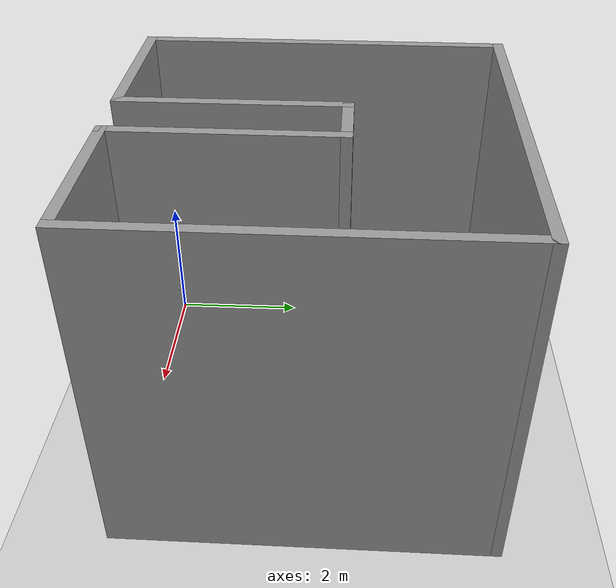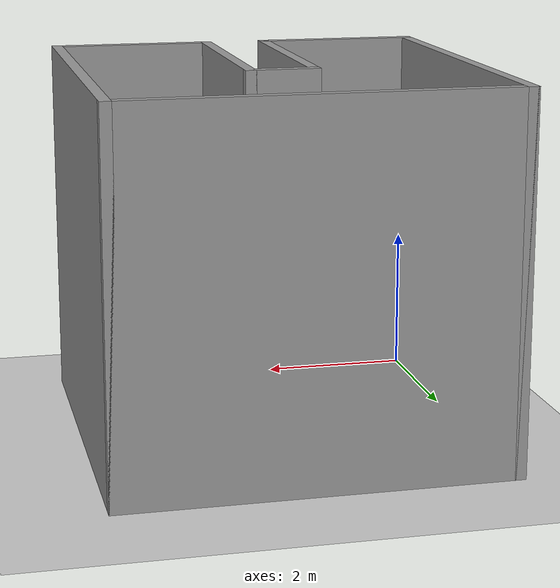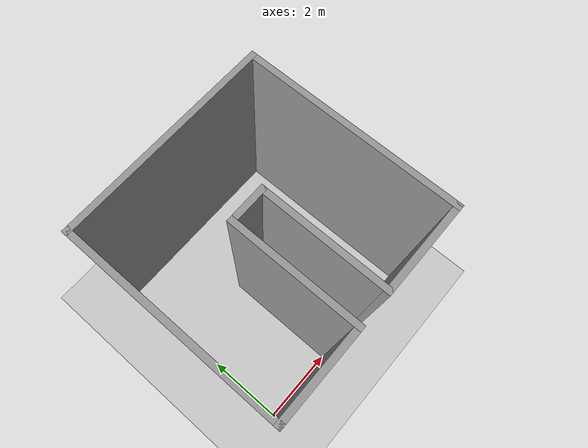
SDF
<sdf version="1.6">
 <world name="default">
  <include><uri>model://ground_plane</uri></include>
  <include><uri>model://sun</uri></include>
  <scene><shadows>false</shadows></scene>
  <physics type="ode">
   <real_time_update_rate>1000.0</real_time_update_rate>
   <max_step_size>0.001</max_step_size>
   <real_time_factor>1</real_time_factor>
   <ode>
    <solver>
     <type>quick</type>
     <iters>150</iters>
     <precon_iters>0</precon_iters>
     <sor>1.400000</sor>
     <use_dynamic_moi_rescaling>1</use_dynamic_moi_rescaling>
    </solver>
    <constraints>
     <cfm>0.00001</cfm>
     <erp>0.2</erp>
     <contact_max_correcting_vel>2000.000000</contact_max_correcting_vel>
     <contact_surface_layer>0.01000</contact_surface_layer>
    </constraints>
   </ode>
  </physics>
  <include><uri>model://env8</uri><pose>2.5 2.5 0 0 0 0</pose></include>
 </world>
</sdf>

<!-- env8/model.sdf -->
<sdf version="1.7">
  <model name="env8">
    <link name="Wall_West_Inner">
      <collision name="Wall_West_Inner_Collision">
        <geometry>
          <box>
            <size>3.15 0.15 5</size>
          </box>
        </geometry>
        <pose>0 0 2.5 0 0 0</pose>
      </collision>
      <visual name="Wall_West_Inner_Visual">
        <geometry>
          <box>
            <size>3.15 0.15 5</size>
          </box>
        </geometry>
        <pose>0 0 2.5 0 0 0</pose>
        <material>
          <script>
            <uri>file://media/materials/scripts/gazebo.material</uri>
            <name>Gazebo/Grey</name>
          </script>
          <ambient>1 1 1 1</ambient>
        </material>
        <meta>
          <layer>0</layer>
        </meta>
      </visual>
      <pose>-0.425 -1.075 0 0 0 1.5708</pose>
    </link>
    <link name="Wall_South_West">
      <collision name="Wall_South_West_Collision">
        <geometry>
          <box>
            <size>2.3 0.15 5</size>
          </box>
        </geometry>
        <pose>0 0 2.5 0 0 0</pose>
      </collision>
      <visual name="Wall_South_West_Visual">
        <geometry>
          <box>
            <size>2.3 0.15 5</size>
          </box>
        </geometry>
        <pose>0 0 2.5 0 0 0</pose>
        <material>
          <script>
            <uri>file://media/materials/scripts/gazebo.material</uri>
            <name>Gazebo/Grey</name>
          </script>
          <ambient>1 1 1 1</ambient>
        </material>
        <meta>
          <layer>0</layer>
        </meta>
      </visual>
      <pose>-1.5 -2.575 0 0 0 0</pose>
    </link>
    <link name="Wall_West">
      <collision name="Wall_West_Collision">
        <geometry>
          <box>
            <size>5.3 0.15 5</size>
          </box>
        </geometry>
        <pose>0 0 2.5 0 0 0</pose>
      </collision>
      <visual name="Wall_West_Visual">
        <geometry>
          <box>
            <size>5.3 0.15 5</size>
          </box>
        </geometry>
        <pose>0 0 2.5 0 0 0</pose>
        <material>
          <script>
            <uri>file://media/materials/scripts/gazebo.material</uri>
            <name>Gazebo/Grey</name>
          </script>
          <ambient>1 1 1 1</ambient>
        </material>
        <meta>
          <layer>0</layer>
        </meta>
      </visual>
      <pose>-2.575 0 0 0 0 1.5708</pose>
    </link>
    <link name="Wall_North">
      <collision name="Wall_North_Collision">
        <geometry>
          <box>
            <size>5.3 0.15 5</size>
          </box>
        </geometry>
        <pose>0 0 2.5 0 0 0</pose>
      </collision>
      <visual name="Wall_North_Visual">
        <geometry>
          <box>
            <size>5.3 0.15 5</size>
          </box>
        </geometry>
        <pose>0 0 2.5 0 0 0</pose>
        <material>
          <script>
            <uri>file://media/materials/scripts/gazebo.material</uri>
            <name>Gazebo/Grey</name>
          </script>
          <ambient>1 1 1 1</ambient>
        </material>
        <meta>
          <layer>0</layer>
        </meta>
      </visual>
      <pose>0 2.575 0 0 0 0</pose>
    </link>
    <link name="Wall_East">
      <collision name="Wall_East_Collision">
        <geometry>
          <box>
            <size>5.3 0.15 5</size>
          </box>
        </geometry>
        <pose>0 0 2.5 0 0 0</pose>
      </collision>
      <visual name="Wall_East_Visual">
        <geometry>
          <box>
            <size>5.3 0.15 5</size>
          </box>
        </geometry>
        <pose>0 0 2.5 0 0 0</pose>
        <material>
          <script>
            <uri>file://media/materials/scripts/gazebo.material</uri>
            <name>Gazebo/Grey</name>
          </script>
          <ambient>1 1 1 1</ambient>
        </material>
        <meta>
          <layer>0</layer>
        </meta>
      </visual>
      <pose>2.575 0 0 0 0 1.5708</pose>
    </link>
    <link name="Wall_South_East">
      <collision name="Wall_South_East_Collision">
        <geometry>
          <box>
            <size>2.3 0.15 5</size>
          </box>
        </geometry>
        <pose>0 0 2.5 0 0 0</pose>
      </collision>
      <visual name="Wall_South_East_Visual">
        <geometry>
          <box>
            <size>2.3 0.15 5</size>
          </box>
        </geometry>
        <pose>0 0 2.5 0 0 0</pose>
        <material>
          <script>
            <uri>file://media/materials/scripts/gazebo.material</uri>
            <name>Gazebo/Grey</name>
          </script>
          <ambient>1 1 1 1</ambient>
        </material>
        <meta>
          <layer>0</layer>
        </meta>
      </visual>
      <pose>1.5 -2.575 0 0 0 0</pose>
    </link>
    <link name="Wall_East_Inner">
      <collision name="Wall_East_Inner_Collision">
        <geometry>
          <box>
            <size>3.15 0.15 5</size>
          </box>
        </geometry>
        <pose>0 0 2.5 0 0 0</pose>
      </collision>
      <visual name="Wall_East_Inner_Visual">
        <geometry>
          <box>
            <size>3.15 0.15 5</size>
          </box>
        </geometry>
        <pose>0 0 2.5 0 0 0</pose>
        <material>
          <script>
            <uri>file://media/materials/scripts/gazebo.material</uri>
            <name>Gazebo/Grey</name>
          </script>
          <ambient>1 1 1 1</ambient>
        </material>
        <meta>
          <layer>0</layer>
        </meta>
      </visual>
      <pose>0.425 -1.075 0 0 0 1.5708</pose>
    </link>
    <link name="Wall_North_Inner">
      <collision name="Wall_North_Inner_Collision">
        <geometry>
          <box>
            <size>1 0.15 5</size>
          </box>
        </geometry>
        <pose>0 0 2.5 0 0 0</pose>
      </collision>
      <visual name="Wall_North_Inner_Visual">
        <geometry>
          <box>
            <size>1 0.15 5</size>
          </box>
        </geometry>
        <pose>0 0 2.5 0 0 0</pose>
        <material>
          <script>
            <uri>file://media/materials/scripts/gazebo.material</uri>
            <name>Gazebo/Grey</name>
          </script>
          <ambient>1 1 1 1</ambient>
        </material>
        <meta>
          <layer>0</layer>
        </meta>
      </visual>
      <pose>0 0.425 0 0 0 0</pose>
    </link>
    <static>1</static>
  </model>
</sdf>
